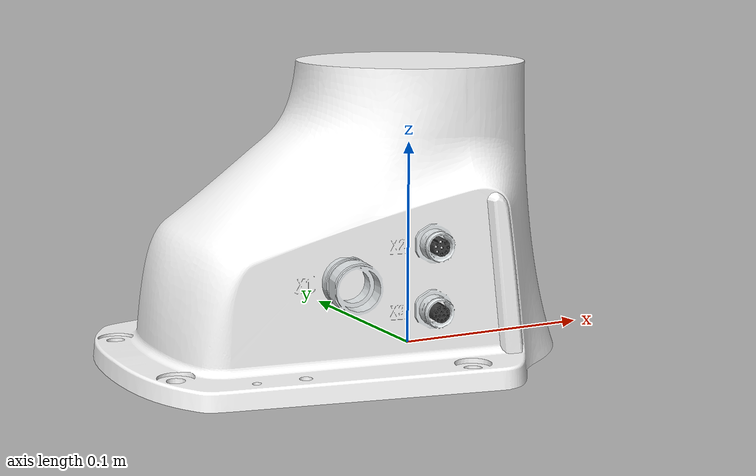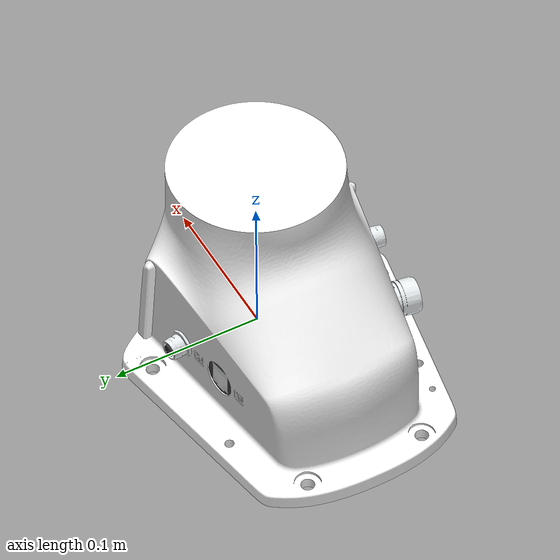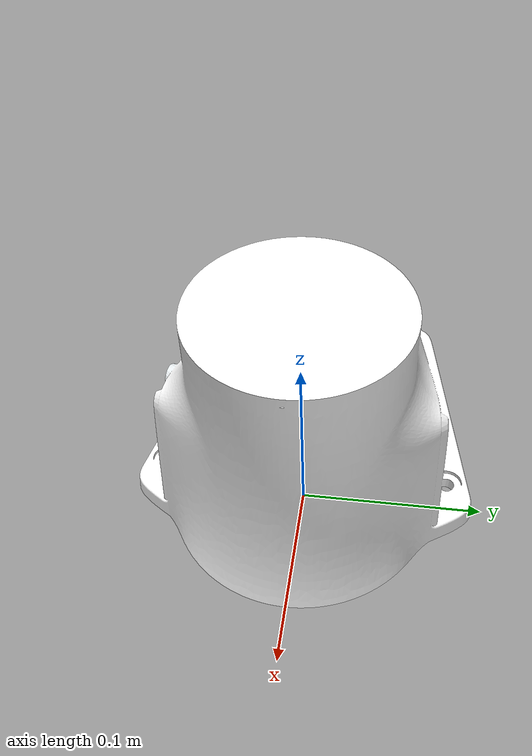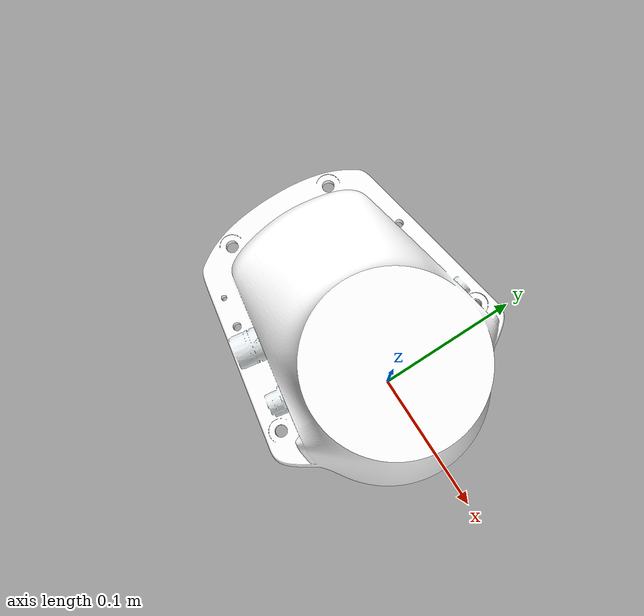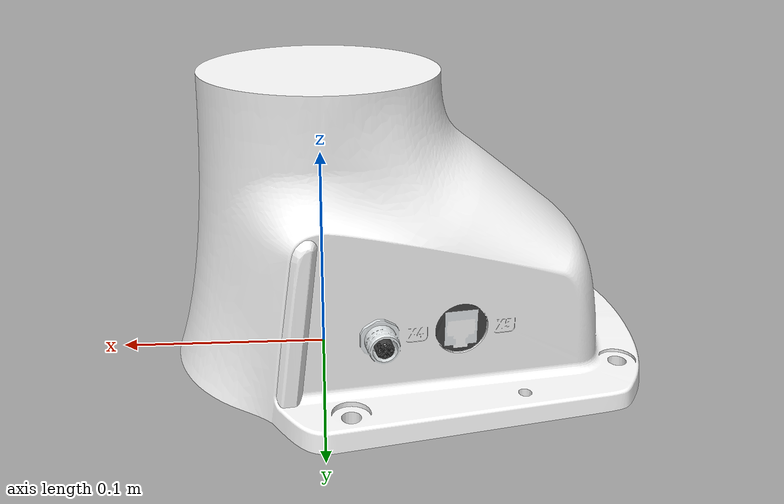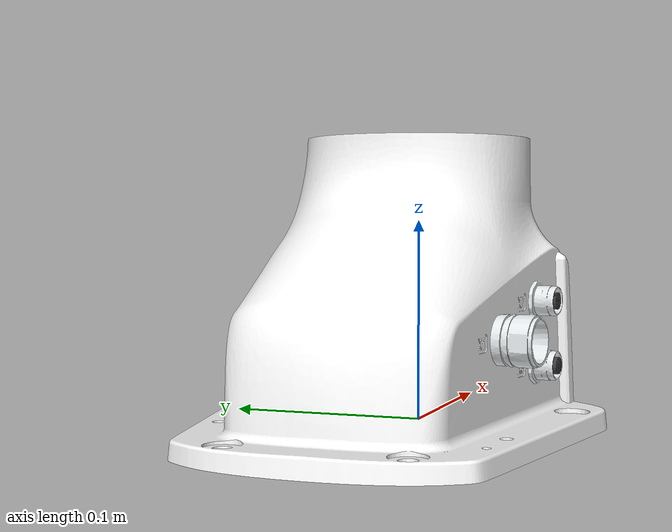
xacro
<?xml version='1.0' ?>
<robot xmlns:xacro="http://www.ros.org/wiki/xacro" name="qolo">
    <link name="world" />
    <joint name="link_to_world" type="fixed">
        <parent link="world"/>
        <child link="link0"/>
        <origin rpy="0 0 0" xyz="0 0 0"/>
    </joint>
    <link name="link0">
        <visual>
            <geometry>
                <mesh filename="package://franka_panda_description/meshes/visual/link0.dae"/>
            </geometry>
        </visual>
        <collision>
            <geometry>
                <mesh filename="package://franka_panda_description/meshes/collision/link0.stl"/>
            </geometry>
        </collision>
    </link>
</robot>
